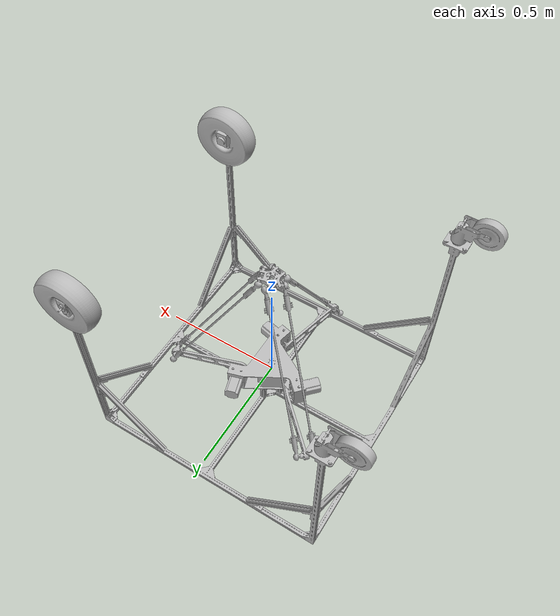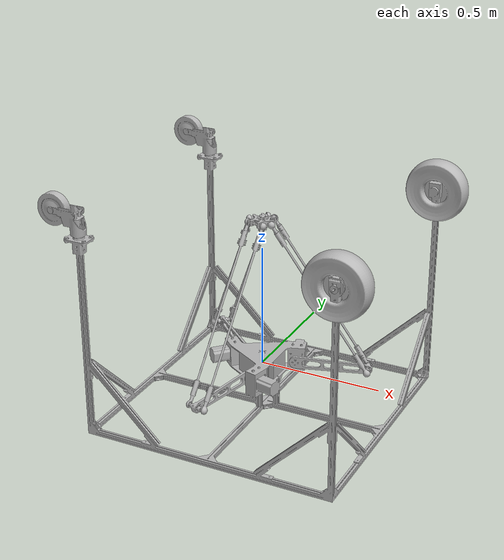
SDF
<sdf version='1.6'>
  <model name='URDF-WeedingRobot'>
    <link name='base_link'>
      <pose frame=''>0 0 0 0 -0 0</pose>
      <inertial>
        <pose frame=''>0.015484 -0.007701 0.067479 0 -0 0</pose>
        <mass>5.89736</mass>
        <inertia>
          <ixx>0.143052</ixx>
          <ixy>-0.0246202</ixy>
          <ixz>0.0323112</ixz>
          <iyy>0.138307</iyy>
          <iyz>0.0290889</iyz>
          <izz>0.134723</izz>
        </inertia>
      </inertial>
      <collision name='base_link_collision'>
        <pose frame=''>0 0 0 0 -0 0</pose>
        <geometry>
          <mesh>
            <scale>1 1 1</scale>
            <uri>model://URDF-WeedingRobot/meshes/base_link.STL</uri>
          </mesh>
        </geometry>
      </collision>
      <collision name='base_link_fixed_joint_lump__Link_LIW2_collision_1'>
        <pose frame=''>-0.49744 -0.4951 0.643 0 -0 0</pose>
        <geometry>
          <mesh>
            <scale>1 1 1</scale>
            <uri>model://URDF-WeedingRobot/meshes/Link_LIW2.STL</uri>
          </mesh>
        </geometry>
      </collision>
      <visual name='base_link_visual'>
        <pose frame=''>0 0 0 0 -0 0</pose>
        <geometry>
          <mesh>
            <scale>1 1 1</scale>
            <uri>model://URDF-WeedingRobot/meshes/base_link.STL</uri>
          </mesh>
        </geometry>
      </visual>
      <visual name='base_link_fixed_joint_lump__Link_LIW2_visual_1'>
        <pose frame=''>-0.49744 -0.4951 0.643 0 -0 0</pose>
        <geometry>
          <mesh>
            <scale>1 1 1</scale>
            <uri>model://URDF-WeedingRobot/meshes/Link_LIW2.STL</uri>
          </mesh>
        </geometry>
      </visual>
    </link>
    <link name='Link_IW2'>
      <pose frame=''>-0.59744 -0.4951 0.7365 -1.57079 -1.57079 3.14159</pose>
      <inertial>
        <pose frame=''>0 -0 0 0 -0 0</pose>
        <mass>0.37946</mass>
        <inertia>
          <ixx>0.000400262</ixx>
          <ixy>1.09682e-20</ixy>
          <ixz>1.21602e-19</ixz>
          <iyy>0.000400262</iyy>
          <iyz>-1.70908e-21</iyz>
          <izz>0.000731237</izz>
        </inertia>
      </inertial>
      <collision name='Link_IW2_collision'>
        <pose frame=''>0 0 0 0 -0 0</pose>
        <geometry>
          <mesh>
            <scale>1 1 1</scale>
            <uri>model://URDF-WeedingRobot/meshes/Link_IW2.STL</uri>
          </mesh>
        </geometry>
      </collision>
      <visual name='Link_IW2_visual'>
        <pose frame=''>0 0 0 0 -0 0</pose>
        <geometry>
          <mesh>
            <scale>1 1 1</scale>
            <uri>model://URDF-WeedingRobot/meshes/Link_IW2.STL</uri>
          </mesh>
        </geometry>
      </visual>
    </link>
    <joint name='Joint_IW2' type='revolute'>
      <child>Link_IW2</child>
      <parent>base_link</parent>
      <axis>
        <xyz>4e-06 -1 0</xyz>
        <limit>
          <lower>-1e+16</lower>
          <upper>1e+16</upper>
        </limit>
        <dynamics>
          <spring_reference>0</spring_reference>
          <spring_stiffness>0</spring_stiffness>
        </dynamics>
        <use_parent_model_frame>1</use_parent_model_frame>
      </axis>
    </joint>
    <link name='Link_DA1'>
      <pose frame=''>0.11687 0.061734 0 1.5708 0.020691 0.3003</pose>
      <inertial>
        <pose frame=''>0.156703 3.8e-05 -0.000376 0 -0 0</pose>
        <mass>0.122762</mass>
        <inertia>
          <ixx>2.41174e-05</ixx>
          <ixy>-3.01126e-10</ixy>
          <ixz>6.67981e-14</ixz>
          <iyy>0.000962754</iyy>
          <iyz>3.27413e-12</iyz>
          <izz>0.000982182</izz>
        </inertia>
      </inertial>
      <collision name='Link_DA1_collision'>
        <pose frame=''>0 0 0 0 -0 0</pose>
        <geometry>
          <mesh>
            <scale>1 1 1</scale>
            <uri>model://URDF-WeedingRobot/meshes/Link_DA1.STL</uri>
          </mesh>
        </geometry>
      </collision>
      <visual name='Link_DA1_visual'>
        <pose frame=''>0 0 0 0 -0 0</pose>
        <geometry>
          <mesh>
            <scale>1 1 1</scale>
            <uri>model://URDF-WeedingRobot/meshes/Link_DA1.STL</uri>
          </mesh>
        </geometry>
      </visual>
    </link>
    <joint name='Joint_DA1' type='revolute'>
      <child>Link_DA1</child>
      <parent>base_link</parent>
      <axis>
        <xyz>-0.295807 0.955248 4e-06</xyz>
        <limit>
          <lower>0</lower>
          <upper>0</upper>
          <effort>0</effort>
          <velocity>0</velocity>
        </limit>
        <dynamics>
          <spring_reference>0</spring_reference>
          <spring_stiffness>0</spring_stiffness>
        </dynamics>
        <use_parent_model_frame>1</use_parent_model_frame>
      </axis>
    </joint>
    <link name='Link_IA1'>
      <pose frame=''>0.381119 0.188018 -0.005947 -1.59682 -1.02037 -2.77714</pose>
      <inertial>
        <pose frame=''>0.363875 -1e-06 0.00629 0 -0 0</pose>
        <mass>0.0611735</mass>
        <inertia>
          <ixx>2.7783e-06</ixx>
          <ixy>-3.85889e-11</ixy>
          <ixz>3.88107e-13</ixz>
          <iyy>0.000398134</iyy>
          <iyz>-7.13335e-13</iyz>
          <izz>0.00039845</izz>
        </inertia>
      </inertial>
      <collision name='Link_IA1_collision'>
        <pose frame=''>0 0 0 0 -0 0</pose>
        <geometry>
          <mesh>
            <scale>1 1 1</scale>
            <uri>model://URDF-WeedingRobot/meshes/Link_IA1.STL</uri>
          </mesh>
        </geometry>
      </collision>
      <visual name='Link_IA1_visual'>
        <pose frame=''>0 0 0 0 -0 0</pose>
        <geometry>
          <mesh>
            <scale>1 1 1</scale>
            <uri>model://URDF-WeedingRobot/meshes/Link_IA1.STL</uri>
          </mesh>
        </geometry>
      </visual>
    </link>
    <joint name='Joint_IA1' type='revolute'>
      <child>Link_IA1</child>
      <parent>Link_DA1</parent>
      <axis>
        <xyz>-0.335592 0.941909 0.013611</xyz>
        <limit>
          <lower>0</lower>
          <upper>0</upper>
          <effort>0</effort>
          <velocity>0</velocity>
        </limit>
        <dynamics>
          <spring_reference>0</spring_reference>
          <spring_stiffness>0</spring_stiffness>
        </dynamics>
        <use_parent_model_frame>1</use_parent_model_frame>
      </axis>
    </joint>
    <link name='Link_EP1'>
      <pose frame=''>0.026405 0.04986 0.614262 -3.14155 1e-05 -1.27048</pose>
      <inertial>
        <pose frame=''>0.039821 0.040001 -0 0 -0 0</pose>
        <mass>0.105977</mass>
        <inertia>
          <ixx>3.99442e-05</ixx>
          <ixy>-7.81193e-14</ixy>
          <ixz>1.5825e-16</ixz>
          <iyy>3.99442e-05</iyy>
          <iyz>2.93149e-16</iyz>
          <izz>7.43414e-05</izz>
        </inertia>
      </inertial>
      <collision name='Link_EP1_collision'>
        <pose frame=''>0 0 0 0 -0 0</pose>
        <geometry>
          <mesh>
            <scale>1 1 1</scale>
            <uri>model://URDF-WeedingRobot/meshes/Link_EP1.STL</uri>
          </mesh>
        </geometry>
      </collision>
      <visual name='Link_EP1_visual'>
        <pose frame=''>0 0 0 0 -0 0</pose>
        <geometry>
          <mesh>
            <scale>1 1 1</scale>
            <uri>model://URDF-WeedingRobot/meshes/Link_EP1.STL</uri>
          </mesh>
        </geometry>
      </visual>
    </link>
    <joint name='Joint_EP1' type='revolute'>
      <child>Link_EP1</child>
      <parent>Link_IA1</parent>
      <axis>
        <xyz>-0.295825 0.955242 1e-05</xyz>
        <limit>
          <lower>0</lower>
          <upper>0</upper>
          <effort>0</effort>
          <velocity>0</velocity>
        </limit>
        <dynamics>
          <spring_reference>0</spring_reference>
          <spring_stiffness>0</spring_stiffness>
        </dynamics>
        <use_parent_model_frame>1</use_parent_model_frame>
      </axis>
    </joint>
    <link name='Link_IA2'>
      <pose frame=''>0.406134 0.106872 -0.006315 1.4138 -1.02037 -2.77714</pose>
      <inertial>
        <pose frame=''>0.363875 -1e-06 0.00629 0 -0 0</pose>
        <mass>0.0611735</mass>
        <inertia>
          <ixx>2.7783e-06</ixx>
          <ixy>-4.18724e-11</ixy>
          <ixz>-8.87255e-13</ixz>
          <iyy>0.000398134</iyy>
          <iyz>1.53062e-12</iyz>
          <izz>0.00039845</izz>
        </inertia>
      </inertial>
      <collision name='Link_IA2_collision'>
        <pose frame=''>0 0 0 0 -0 0</pose>
        <geometry>
          <mesh>
            <scale>1 1 1</scale>
            <uri>model://URDF-WeedingRobot/meshes/Link_IA2.STL</uri>
          </mesh>
        </geometry>
      </collision>
      <visual name='Link_IA2_visual'>
        <pose frame=''>0 0 0 0 -0 0</pose>
        <geometry>
          <mesh>
            <scale>1 1 1</scale>
            <uri>model://URDF-WeedingRobot/meshes/Link_IA2.STL</uri>
          </mesh>
        </geometry>
      </visual>
    </link>
    <joint name='Joint_IA2' type='revolute'>
      <child>Link_IA2</child>
      <parent>Link_DA1</parent>
      <axis>
        <xyz>0.227551 -0.970326 -0.081778</xyz>
        <limit>
          <lower>0</lower>
          <upper>0</upper>
          <effort>0</effort>
          <velocity>0</velocity>
        </limit>
        <dynamics>
          <spring_reference>0</spring_reference>
          <spring_stiffness>0</spring_stiffness>
        </dynamics>
        <use_parent_model_frame>1</use_parent_model_frame>
      </axis>
    </joint>
    <link name='Link_DA2'>
      <pose frame=''>-0.004973 -0.13208 0 1.5708 0.020691 -1.7941</pose>
      <inertial>
        <pose frame=''>0.156703 3.8e-05 -0.000376 0 -0 0</pose>
        <mass>0.122762</mass>
        <inertia>
          <ixx>2.41174e-05</ixx>
          <ixy>-3.01133e-10</ixy>
          <ixz>-3.10234e-14</ixz>
          <iyy>0.000962754</iyy>
          <iyz>3.2948e-12</iyz>
          <izz>0.000982182</izz>
        </inertia>
      </inertial>
      <collision name='Link_DA2_collision'>
        <pose frame=''>0 0 0 0 -0 0</pose>
        <geometry>
          <mesh>
            <scale>1 1 1</scale>
            <uri>model://URDF-WeedingRobot/meshes/Link_DA2.STL</uri>
          </mesh>
        </geometry>
      </collision>
      <visual name='Link_DA2_visual'>
        <pose frame=''>0 0 0 0 -0 0</pose>
        <geometry>
          <mesh>
            <scale>1 1 1</scale>
            <uri>model://URDF-WeedingRobot/meshes/Link_DA2.STL</uri>
          </mesh>
        </geometry>
      </visual>
    </link>
    <joint name='Joint_DA2' type='revolute'>
      <child>Link_DA2</child>
      <parent>base_link</parent>
      <axis>
        <xyz>0.975171 -0.221453 4e-06</xyz>
        <limit>
          <lower>0</lower>
          <upper>0</upper>
          <effort>0</effort>
          <velocity>0</velocity>
        </limit>
        <dynamics>
          <spring_reference>0</spring_reference>
          <spring_stiffness>0</spring_stiffness>
        </dynamics>
        <use_parent_model_frame>1</use_parent_model_frame>
      </axis>
    </joint>
    <link name='Link_IA3'>
      <pose frame=''>-0.027724 -0.424018 -0.005978 -1.58159 -1.02037 1.41164</pose>
      <inertial>
        <pose frame=''>0.363875 -0 0.00629 0 -0 0</pose>
        <mass>0.0611735</mass>
        <inertia>
          <ixx>2.77828e-06</ixx>
          <ixy>-5.46968e-11</ixy>
          <ixz>-1.03024e-12</ixz>
          <iyy>0.000398134</iyy>
          <iyz>1.69708e-12</iyz>
          <izz>0.00039845</izz>
        </inertia>
      </inertial>
      <collision name='Link_IA3_collision'>
        <pose frame=''>0 0 0 0 -0 0</pose>
        <geometry>
          <mesh>
            <scale>1 1 1</scale>
            <uri>model://URDF-WeedingRobot/meshes/Link_IA3.STL</uri>
          </mesh>
        </geometry>
      </collision>
      <visual name='Link_IA3_visual'>
        <pose frame=''>0 0 0 0 -0 0</pose>
        <geometry>
          <mesh>
            <scale>1 1 1</scale>
            <uri>model://URDF-WeedingRobot/meshes/Link_IA3.STL</uri>
          </mesh>
        </geometry>
      </visual>
    </link>
    <joint name='Joint_IA3' type='revolute'>
      <child>Link_IA3</child>
      <parent>Link_DA2</parent>
      <axis>
        <xyz>0.985846 -0.167557 0.005646</xyz>
        <limit>
          <lower>0</lower>
          <upper>0</upper>
          <effort>0</effort>
          <velocity>0</velocity>
        </limit>
        <dynamics>
          <spring_reference>0</spring_reference>
          <spring_stiffness>0</spring_stiffness>
        </dynamics>
        <use_parent_model_frame>1</use_parent_model_frame>
      </axis>
    </joint>
    <link name='Link_IA4'>
      <pose frame=''>-0.110678 -0.406182 -0.00568 1.73039 -1.02037 1.41164</pose>
      <inertial>
        <pose frame=''>0.363875 -0 0.00629 0 -0 0</pose>
        <mass>0.0611735</mass>
        <inertia>
          <ixx>2.77828e-06</ixx>
          <ixy>-5.45045e-11</ixy>
          <ixz>8.93669e-13</ixz>
          <iyy>0.000398134</iyy>
          <iyz>-1.48945e-12</iyz>
          <izz>0.00039845</izz>
        </inertia>
      </inertial>
      <collision name='Link_IA4_collision'>
        <pose frame=''>0 0 0 0 -0 0</pose>
        <geometry>
          <mesh>
            <scale>1 1 1</scale>
            <uri>model://URDF-WeedingRobot/meshes/Link_IA4.STL</uri>
          </mesh>
        </geometry>
      </collision>
      <visual name='Link_IA4_visual'>
        <pose frame=''>0 0 0 0 -0 0</pose>
        <geometry>
          <mesh>
            <scale>1 1 1</scale>
            <uri>model://URDF-WeedingRobot/meshes/Link_IA4.STL</uri>
          </mesh>
        </geometry>
      </visual>
    </link>
    <joint name='Joint_IA4' type='revolute'>
      <child>Link_IA4</child>
      <parent>Link_DA2</parent>
      <axis>
        <xyz>-0.99628 0.022734 0.083122</xyz>
        <limit>
          <lower>0</lower>
          <upper>0</upper>
          <effort>0</effort>
          <velocity>0</velocity>
        </limit>
        <dynamics>
          <spring_reference>0</spring_reference>
          <spring_stiffness>0</spring_stiffness>
        </dynamics>
        <use_parent_model_frame>1</use_parent_model_frame>
      </axis>
    </joint>
    <link name='Link_DA3'>
      <pose frame=''>-0.1119 0.070348 0 1.5708 0.020691 2.3947</pose>
      <inertial>
        <pose frame=''>0.156703 3.8e-05 -0.000376 0 -0 0</pose>
        <mass>0.122762</mass>
        <inertia>
          <ixx>2.41174e-05</ixx>
          <ixy>-3.01128e-10</ixy>
          <ixz>4.20187e-14</ixz>
          <iyy>0.000962754</iyy>
          <iyz>3.28087e-12</iyz>
          <izz>0.000982182</izz>
        </inertia>
      </inertial>
      <collision name='Link_DA3_collision'>
        <pose frame=''>0 0 0 0 -0 0</pose>
        <geometry>
          <mesh>
            <scale>1 1 1</scale>
            <uri>model://URDF-WeedingRobot/meshes/Link_DA3.STL</uri>
          </mesh>
        </geometry>
      </collision>
      <visual name='Link_DA3_visual'>
        <pose frame=''>0 0 0 0 -0 0</pose>
        <geometry>
          <mesh>
            <scale>1 1 1</scale>
            <uri>model://URDF-WeedingRobot/meshes/Link_DA3.STL</uri>
          </mesh>
        </geometry>
      </visual>
    </link>
    <joint name='Joint_DA3' type='revolute'>
      <child>Link_DA3</child>
      <parent>base_link</parent>
      <axis>
        <xyz>-0.679362 -0.733803 4e-06</xyz>
        <limit>
          <lower>0</lower>
          <upper>0</upper>
          <effort>0</effort>
          <velocity>0</velocity>
        </limit>
        <dynamics>
          <spring_reference>0</spring_reference>
          <spring_stiffness>0</spring_stiffness>
        </dynamics>
        <use_parent_model_frame>1</use_parent_model_frame>
      </axis>
    </joint>
    <link name='Link_IA5'>
      <pose frame=''>-0.353399 0.236057 -0.00594 -1.60033 -1.02037 -0.682743</pose>
      <inertial>
        <pose frame=''>0.363875 -1e-06 0.00629 0 -0 0</pose>
        <mass>0.0611736</mass>
        <inertia>
          <ixx>2.77832e-06</ixx>
          <ixy>-2.7296e-11</ixy>
          <ixz>9.25375e-14</ixz>
          <iyy>0.000398134</iyy>
          <iyz>-1.2425e-13</iyz>
          <izz>0.00039845</izz>
        </inertia>
      </inertial>
      <collision name='Link_IA5_collision'>
        <pose frame=''>0 0 0 0 -0 0</pose>
        <geometry>
          <mesh>
            <scale>1 1 1</scale>
            <uri>model://URDF-WeedingRobot/meshes/Link_IA5.STL</uri>
          </mesh>
        </geometry>
      </collision>
      <visual name='Link_IA5_visual'>
        <pose frame=''>0 0 0 0 -0 0</pose>
        <geometry>
          <mesh>
            <scale>1 1 1</scale>
            <uri>model://URDF-WeedingRobot/meshes/Link_IA5.STL</uri>
          </mesh>
        </geometry>
      </visual>
    </link>
    <joint name='Joint_IA5' type='revolute'>
      <child>Link_IA5</child>
      <parent>Link_DA3</parent>
      <axis>
        <xyz>-0.650175 -0.759627 0.015446</xyz>
        <limit>
          <lower>0</lower>
          <upper>0</upper>
          <effort>0</effort>
          <velocity>0</velocity>
        </limit>
        <dynamics>
          <spring_reference>0</spring_reference>
          <spring_stiffness>0</spring_stiffness>
        </dynamics>
        <use_parent_model_frame>1</use_parent_model_frame>
      </axis>
    </joint>
    <link name='Link_IA6'>
      <pose frame=''>-0.29579 0.298467 -0.006165 1.4888 -1.02037 -0.682741</pose>
      <inertial>
        <pose frame=''>0.363875 -1e-06 0.00629 0 -0 0</pose>
        <mass>0.0611736</mass>
        <inertia>
          <ixx>2.77832e-06</ixx>
          <ixy>-2.60393e-11</ixy>
          <ixz>-3.70719e-13</ixz>
          <iyy>0.000398134</iyy>
          <iyz>5.68726e-13</iyz>
          <izz>0.00039845</izz>
        </inertia>
      </inertial>
      <collision name='Link_IA6_collision'>
        <pose frame=''>0 0 0 0 -0 0</pose>
        <geometry>
          <mesh>
            <scale>1 1 1</scale>
            <uri>model://URDF-WeedingRobot/meshes/Link_IA6.STL</uri>
          </mesh>
        </geometry>
      </collision>
      <visual name='Link_IA6_visual'>
        <pose frame=''>0 0 0 0 -0 0</pose>
        <geometry>
          <mesh>
            <scale>1 1 1</scale>
            <uri>model://URDF-WeedingRobot/meshes/Link_IA6.STL</uri>
          </mesh>
        </geometry>
      </visual>
    </link>
    <joint name='Joint_IA6' type='revolute'>
      <child>Link_IA6</child>
      <parent>Link_DA3</parent>
      <axis>
        <xyz>0.682959 0.7292 -0.042838</xyz>
        <limit>
          <lower>0</lower>
          <upper>0</upper>
          <effort>0</effort>
          <velocity>0</velocity>
        </limit>
        <dynamics>
          <spring_reference>0</spring_reference>
          <spring_stiffness>0</spring_stiffness>
        </dynamics>
        <use_parent_model_frame>1</use_parent_model_frame>
      </axis>
    </joint>
    <link name='Link_DW1'>
      <pose frame=''>0.52283 0.5212 0.66 -1.57079 -1.57079 3.14159</pose>
      <inertial>
        <pose frame=''>-0 0 0.032832 0 -0 0</pose>
        <mass>2.94158</mass>
        <inertia>
          <ixx>0.0137584</ixx>
          <ixy>7.31575e-07</ixy>
          <ixz>3.45946e-09</ixz>
          <iyy>0.0137589</iyy>
          <iyz>-1.44111e-09</iyz>
          <izz>0.0251724</izz>
        </inertia>
      </inertial>
      <collision name='Link_DW1_collision'>
        <pose frame=''>0 0 0 0 -0 0</pose>
        <geometry>
          <mesh>
            <scale>1 1 1</scale>
            <uri>model://URDF-WeedingRobot/meshes/Link_DW1.STL</uri>
          </mesh>
        </geometry>
      </collision>
      <visual name='Link_DW1_visual'>
        <pose frame=''>0 0 0 0 -0 0</pose>
        <geometry>
          <mesh>
            <scale>1 1 1</scale>
            <uri>model://URDF-WeedingRobot/meshes/Link_DW1.STL</uri>
          </mesh>
        </geometry>
      </visual>
    </link>
    <joint name='Joint_DW1' type='revolute'>
      <child>Link_DW1</child>
      <parent>base_link</parent>
      <axis>
        <xyz>-4e-06 1 -0</xyz>
        <limit>
          <lower>-1e+16</lower>
          <upper>1e+16</upper>
        </limit>
        <dynamics>
          <spring_reference>0</spring_reference>
          <spring_stiffness>0</spring_stiffness>
        </dynamics>
        <use_parent_model_frame>1</use_parent_model_frame>
      </axis>
    </joint>
    <link name='Link_DW2'>
      <pose frame=''>0.52268 -0.5212 0.66 -1.57079 -1.57079 3.14159</pose>
      <inertial>
        <pose frame=''>-0 -0 -0.032832 0 -0 0</pose>
        <mass>2.94158</mass>
        <inertia>
          <ixx>0.0137584</ixx>
          <ixy>-7.31575e-07</ixy>
          <ixz>-3.45946e-09</ixz>
          <iyy>0.0137589</iyy>
          <iyz>-1.44111e-09</iyz>
          <izz>0.0251724</izz>
        </inertia>
      </inertial>
      <collision name='Link_DW2_collision'>
        <pose frame=''>0 0 0 0 -0 0</pose>
        <geometry>
          <mesh>
            <scale>1 1 1</scale>
            <uri>model://URDF-WeedingRobot/meshes/Link_DW2.STL</uri>
          </mesh>
        </geometry>
      </collision>
      <visual name='Link_DW2_visual'>
        <pose frame=''>0 0 0 0 -0 0</pose>
        <geometry>
          <mesh>
            <scale>1 1 1</scale>
            <uri>model://URDF-WeedingRobot/meshes/Link_DW2.STL</uri>
          </mesh>
        </geometry>
      </visual>
    </link>
    <joint name='Joint_DW2' type='revolute'>
      <child>Link_DW2</child>
      <parent>base_link</parent>
      <axis>
        <xyz>4e-06 -1 0</xyz>
        <limit>
          <lower>-1e+16</lower>
          <upper>1e+16</upper>
        </limit>
        <dynamics>
          <spring_reference>0</spring_reference>
          <spring_stiffness>0</spring_stiffness>
        </dynamics>
        <use_parent_model_frame>1</use_parent_model_frame>
      </axis>
    </joint>
    <link name='Link_LIW1'>
      <pose frame=''>-0.49744 0.4949 0.643 0 -0 0</pose>
      <inertial>
        <pose frame=''>-0.028084 0 0.063719 0 -0 0</pose>
        <mass>0.0919097</mass>
        <inertia>
          <ixx>8.42024e-05</ixx>
          <ixy>3.27347e-10</ixy>
          <ixz>2.22306e-05</ixz>
          <iyy>9.5644e-05</iyy>
          <iyz>5.11505e-10</iyz>
          <izz>6.8217e-05</izz>
        </inertia>
      </inertial>
      <collision name='Link_LIW1_collision'>
        <pose frame=''>0 0 0 0 -0 0</pose>
        <geometry>
          <mesh>
            <scale>1 1 1</scale>
            <uri>model://URDF-WeedingRobot/meshes/Link_LIW1.STL</uri>
          </mesh>
        </geometry>
      </collision>
      <visual name='Link_LIW1_visual'>
        <pose frame=''>0 0 0 0 -0 0</pose>
        <geometry>
          <mesh>
            <scale>1 1 1</scale>
            <uri>model://URDF-WeedingRobot/meshes/Link_LIW1.STL</uri>
          </mesh>
        </geometry>
      </visual>
    </link>
    <joint name='Joint_LIW1' type='revolute'>
      <child>Link_LIW1</child>
      <parent>base_link</parent>
      <axis>
        <xyz>0 0 -1</xyz>
        <limit>
          <lower>-1e+16</lower>
          <upper>1e+16</upper>
        </limit>
        <dynamics>
          <spring_reference>0</spring_reference>
          <spring_stiffness>0</spring_stiffness>
        </dynamics>
        <use_parent_model_frame>1</use_parent_model_frame>
      </axis>
    </joint>
    <link name='Link_IW1'>
      <pose frame=''>-0.59744 0.4949 0.7365 -1.57079 -1.57079 3.14159</pose>
      <inertial>
        <pose frame=''>0 0 0 0 -0 0</pose>
        <mass>0.37946</mass>
        <inertia>
          <ixx>0.000400262</ixx>
          <ixy>-6.4556e-20</ixy>
          <ixz>1.34311e-20</ixz>
          <iyy>0.000400262</iyy>
          <iyz>-1.25895e-21</iyz>
          <izz>0.000731237</izz>
        </inertia>
      </inertial>
      <collision name='Link_IW1_collision'>
        <pose frame=''>0 0 0 0 -0 0</pose>
        <geometry>
          <mesh>
            <scale>1 1 1</scale>
            <uri>model://URDF-WeedingRobot/meshes/Link_IW1.STL</uri>
          </mesh>
        </geometry>
      </collision>
      <visual name='Link_IW1_visual'>
        <pose frame=''>0 0 0 0 -0 0</pose>
        <geometry>
          <mesh>
            <scale>1 1 1</scale>
            <uri>model://URDF-WeedingRobot/meshes/Link_IW1.STL</uri>
          </mesh>
        </geometry>
      </visual>
    </link>
    <joint name='Joint_IW1' type='revolute'>
      <child>Link_IW1</child>
      <parent>Link_LIW1</parent>
      <axis>
        <xyz>-4e-06 1 -0</xyz>
        <limit>
          <lower>-1e+16</lower>
          <upper>1e+16</upper>
        </limit>
        <dynamics>
          <spring_reference>0</spring_reference>
          <spring_stiffness>0</spring_stiffness>
        </dynamics>
        <use_parent_model_frame>1</use_parent_model_frame>
      </axis>
    </joint>
  </model>
</sdf>
